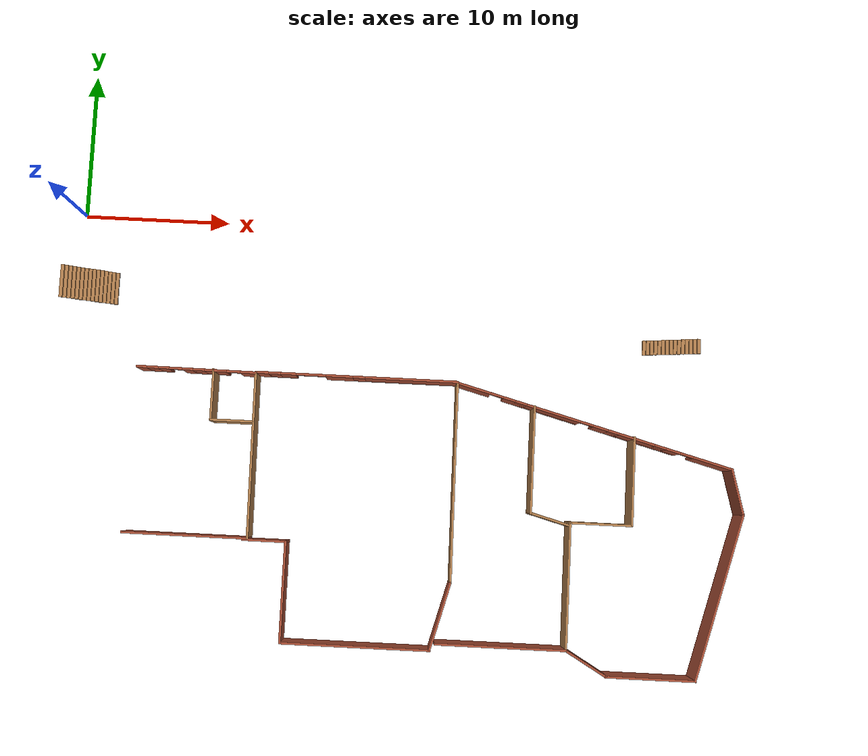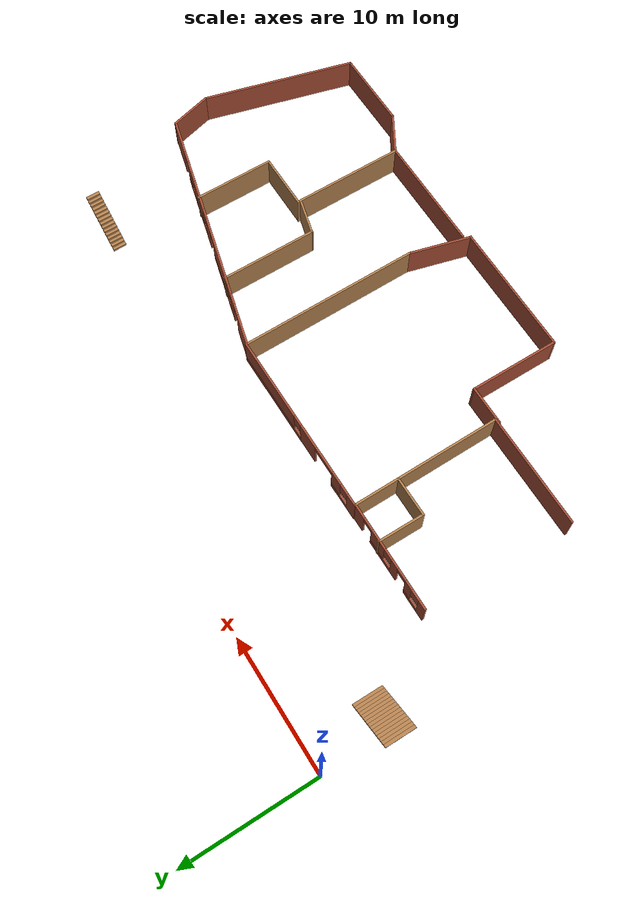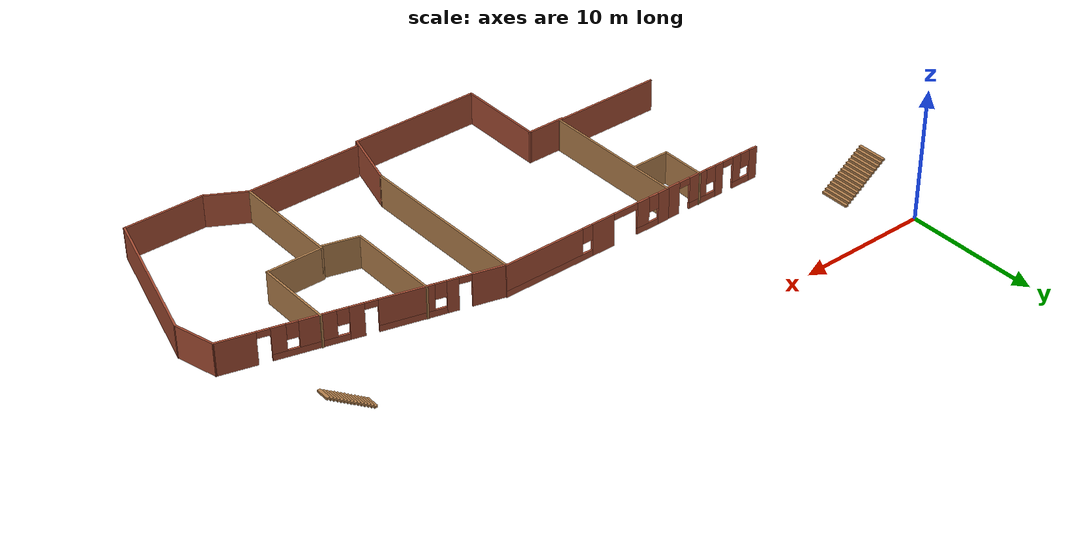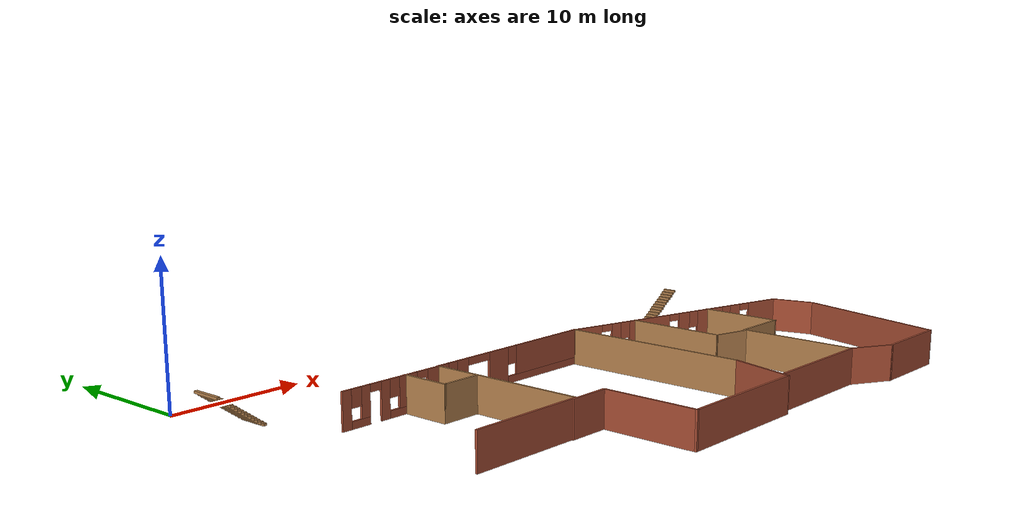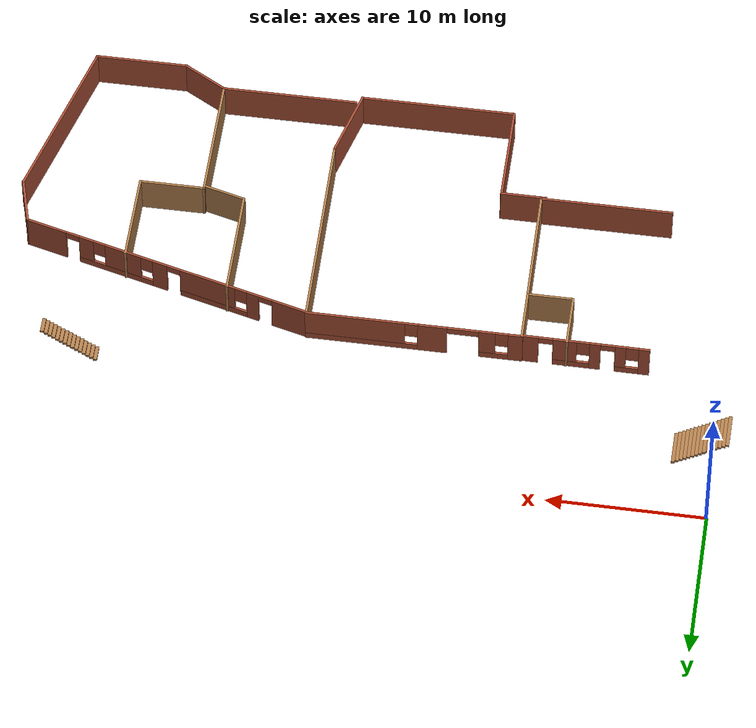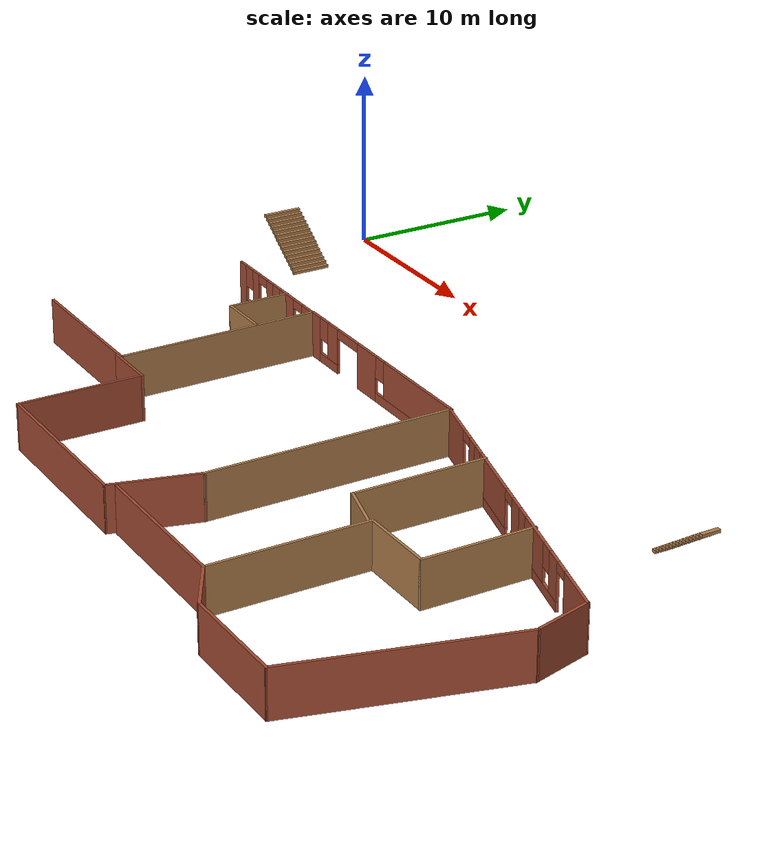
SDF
<sdf version="1.6">
 <model name="vital">
  <pose>12.2387 -3.95497 0 0 -0 0</pose>
  <link name="Stairs_0">
   <visual name="Stairs_0_Visual_0">
    <pose>-9.74123 -1.05523 0.083333 0 -0 -1.5708</pose>
    <geometry><box><size>2.22056 0.233333 0.166667</size></box></geometry>
    <material>
     <script><uri>file://media/materials/scripts/gazebo.material</uri><name>Gazebo/Wood</name></script>
     <ambient>1 1 1 1</ambient>
    </material>
   </visual>
   <collision name="Stairs_0_Collision_0">
    <geometry><box><size>2.22056 0.233333 0.166667</size></box></geometry>
    <pose>-9.74123 -1.05523 0.083333 0 -0 -1.5708</pose>
   </collision>
   <visual name="Stairs_0_Visual_1">
    <pose>-9.97456 -1.05523 0.25 0 -0 -1.5708</pose>
    <geometry><box><size>2.22056 0.233333 0.166667</size></box></geometry>
    <material>
     <script><uri>file://media/materials/scripts/gazebo.material</uri><name>Gazebo/Wood</name></script>
     <ambient>1 1 1 1</ambient>
    </material>
   </visual>
   <collision name="Stairs_0_Collision_1">
    <geometry><box><size>2.22056 0.233333 0.166667</size></box></geometry>
    <pose>-9.97456 -1.05523 0.25 0 -0 -1.5708</pose>
   </collision>
   <visual name="Stairs_0_Visual_2">
    <pose>-10.2079 -1.05523 0.416667 0 -0 -1.5708</pose>
    <geometry><box><size>2.22056 0.233333 0.166667</size></box></geometry>
    <material>
     <script><uri>file://media/materials/scripts/gazebo.material</uri><name>Gazebo/Wood</name></script>
     <ambient>1 1 1 1</ambient>
    </material>
   </visual>
   <collision name="Stairs_0_Collision_2">
    <geometry><box><size>2.22056 0.233333 0.166667</size></box></geometry>
    <pose>-10.2079 -1.05523 0.416667 0 -0 -1.5708</pose>
   </collision>
   <visual name="Stairs_0_Visual_3">
    <pose>-10.4412 -1.05523 0.583333 0 -0 -1.5708</pose>
    <geometry><box><size>2.22056 0.233333 0.166667</size></box></geometry>
    <material>
     <script><uri>file://media/materials/scripts/gazebo.material</uri><name>Gazebo/Wood</name></script>
     <ambient>1 1 1 1</ambient>
    </material>
   </visual>
   <collision name="Stairs_0_Collision_3">
    <geometry><box><size>2.22056 0.233333 0.166667</size></box></geometry>
    <pose>-10.4412 -1.05523 0.583333 0 -0 -1.5708</pose>
   </collision>
   <visual name="Stairs_0_Visual_4">
    <pose>-10.6746 -1.05523 0.75 0 -0 -1.5708</pose>
    <geometry><box><size>2.22056 0.233333 0.166667</size></box></geometry>
    <material>
     <script><uri>file://media/materials/scripts/gazebo.material</uri><name>Gazebo/Wood</name></script>
     <ambient>1 1 1 1</ambient>
    </material>
   </visual>
   <collision name="Stairs_0_Collision_4">
    <geometry><box><size>2.22056 0.233333 0.166667</size></box></geometry>
    <pose>-10.6746 -1.05523 0.75 0 -0 -1.5708</pose>
   </collision>
   <visual name="Stairs_0_Visual_5">
    <pose>-10.9079 -1.05523 0.916667 0 -0 -1.5708</pose>
    <geometry><box><size>2.22056 0.233333 0.166667</size></box></geometry>
    <material>
     <script><uri>file://media/materials/scripts/gazebo.material</uri><name>Gazebo/Wood</name></script>
     <ambient>1 1 1 1</ambient>
    </material>
   </visual>
   <collision name="Stairs_0_Collision_5">
    <geometry><box><size>2.22056 0.233333 0.166667</size></box></geometry>
    <pose>-10.9079 -1.05523 0.916667 0 -0 -1.5708</pose>
   </collision>
   <visual name="Stairs_0_Visual_6">
    <pose>-11.1412 -1.05523 1.08333 0 -0 -1.5708</pose>
    <geometry><box><size>2.22056 0.233333 0.166667</size></box></geometry>
    <material>
     <script><uri>file://media/materials/scripts/gazebo.material</uri><name>Gazebo/Wood</name></script>
     <ambient>1 1 1 1</ambient>
    </material>
   </visual>
   <collision name="Stairs_0_Collision_6">
    <geometry><box><size>2.22056 0.233333 0.166667</size></box></geometry>
    <pose>-11.1412 -1.05523 1.08333 0 -0 -1.5708</pose>
   </collision>
   <visual name="Stairs_0_Visual_7">
    <pose>-11.3746 -1.05523 1.25 0 -0 -1.5708</pose>
    <geometry><box><size>2.22056 0.233333 0.166667</size></box></geometry>
    <material>
     <script><uri>file://media/materials/scripts/gazebo.material</uri><name>Gazebo/Wood</name></script>
     <ambient>1 1 1 1</ambient>
    </material>
   </visual>
   <collision name="Stairs_0_Collision_7">
    <geometry><box><size>2.22056 0.233333 0.166667</size></box></geometry>
    <pose>-11.3746 -1.05523 1.25 0 -0 -1.5708</pose>
   </collision>
   <visual name="Stairs_0_Visual_8">
    <pose>-11.6079 -1.05523 1.41667 0 -0 -1.5708</pose>
    <geometry><box><size>2.22056 0.233333 0.166667</size></box></geometry>
    <material>
     <script><uri>file://media/materials/scripts/gazebo.material</uri><name>Gazebo/Wood</name></script>
     <ambient>1 1 1 1</ambient>
    </material>
   </visual>
   <collision name="Stairs_0_Collision_8">
    <geometry><box><size>2.22056 0.233333 0.166667</size></box></geometry>
    <pose>-11.6079 -1.05523 1.41667 0 -0 -1.5708</pose>
   </collision>
   <visual name="Stairs_0_Visual_9">
    <pose>-11.8412 -1.05523 1.58333 0 -0 -1.5708</pose>
    <geometry><box><size>2.22056 0.233333 0.166667</size></box></geometry>
    <material>
     <script><uri>file://media/materials/scripts/gazebo.material</uri><name>Gazebo/Wood</name></script>
     <ambient>1 1 1 1</ambient>
    </material>
   </visual>
   <collision name="Stairs_0_Collision_9">
    <geometry><box><size>2.22056 0.233333 0.166667</size></box></geometry>
    <pose>-11.8412 -1.05523 1.58333 0 -0 -1.5708</pose>
   </collision>
   <visual name="Stairs_0_Visual_10">
    <pose>-12.0746 -1.05523 1.75 0 -0 -1.5708</pose>
    <geometry><box><size>2.22056 0.233333 0.166667</size></box></geometry>
    <material>
     <script><uri>file://media/materials/scripts/gazebo.material</uri><name>Gazebo/Wood</name></script>
     <ambient>1 1 1 1</ambient>
    </material>
   </visual>
   <collision name="Stairs_0_Collision_10">
    <geometry><box><size>2.22056 0.233333 0.166667</size></box></geometry>
    <pose>-12.0746 -1.05523 1.75 0 -0 -1.5708</pose>
   </collision>
   <visual name="Stairs_0_Visual_11">
    <pose>-12.3079 -1.05523 1.91667 0 -0 -1.5708</pose>
    <geometry><box><size>2.22056 0.233333 0.166667</size></box></geometry>
    <material>
     <script><uri>file://media/materials/scripts/gazebo.material</uri><name>Gazebo/Wood</name></script>
     <ambient>1 1 1 1</ambient>
    </material>
   </visual>
   <collision name="Stairs_0_Collision_11">
    <geometry><box><size>2.22056 0.233333 0.166667</size></box></geometry>
    <pose>-12.3079 -1.05523 1.91667 0 -0 -1.5708</pose>
   </collision>
   <visual name="Stairs_0_Visual_12">
    <pose>-12.5412 -1.05523 2.08333 0 -0 -1.5708</pose>
    <geometry><box><size>2.22056 0.233333 0.166667</size></box></geometry>
    <material>
     <script><uri>file://media/materials/scripts/gazebo.material</uri><name>Gazebo/Wood</name></script>
     <ambient>1 1 1 1</ambient>
    </material>
   </visual>
   <collision name="Stairs_0_Collision_12">
    <geometry><box><size>2.22056 0.233333 0.166667</size></box></geometry>
    <pose>-12.5412 -1.05523 2.08333 0 -0 -1.5708</pose>
   </collision>
   <visual name="Stairs_0_Visual_13">
    <pose>-12.7746 -1.05523 2.25 0 -0 -1.5708</pose>
    <geometry><box><size>2.22056 0.233333 0.166667</size></box></geometry>
    <material>
     <script><uri>file://media/materials/scripts/gazebo.material</uri><name>Gazebo/Wood</name></script>
     <ambient>1 1 1 1</ambient>
    </material>
   </visual>
   <collision name="Stairs_0_Collision_13">
    <geometry><box><size>2.22056 0.233333 0.166667</size></box></geometry>
    <pose>-12.7746 -1.05523 2.25 0 -0 -1.5708</pose>
   </collision>
   <visual name="Stairs_0_Visual_14">
    <pose>-13.0079 -1.05522 2.41667 0 -0 -1.5708</pose>
    <geometry><box><size>2.22056 0.233333 0.166667</size></box></geometry>
    <material>
     <script><uri>file://media/materials/scripts/gazebo.material</uri><name>Gazebo/Wood</name></script>
     <ambient>1 1 1 1</ambient>
    </material>
   </visual>
   <collision name="Stairs_0_Collision_14">
    <geometry><box><size>2.22056 0.233333 0.166667</size></box></geometry>
    <pose>-13.0079 -1.05522 2.41667 0 -0 -1.5708</pose>
   </collision>
  </link>
  <link name="Stairs_1">
   <visual name="Stairs_1_Visual_0">
    <pose>27.018 -3.37906 0.083333 0 -0 1.5708</pose>
    <geometry><box><size>1 0.233333 0.166667</size></box></geometry>
    <material>
     <script><uri>file://media/materials/scripts/gazebo.material</uri><name>Gazebo/Wood</name></script>
     <ambient>1 1 1 1</ambient>
    </material>
   </visual>
   <collision name="Stairs_1_Collision_0">
    <geometry><box><size>1 0.233333 0.166667</size></box></geometry>
    <pose>27.018 -3.37906 0.083333 0 -0 1.5708</pose>
   </collision>
   <visual name="Stairs_1_Visual_1">
    <pose>27.2513 -3.37906 0.25 0 -0 1.5708</pose>
    <geometry><box><size>1 0.233333 0.166667</size></box></geometry>
    <material>
     <script><uri>file://media/materials/scripts/gazebo.material</uri><name>Gazebo/Wood</name></script>
     <ambient>1 1 1 1</ambient>
    </material>
   </visual>
   <collision name="Stairs_1_Collision_1">
    <geometry><box><size>1 0.233333 0.166667</size></box></geometry>
    <pose>27.2513 -3.37906 0.25 0 -0 1.5708</pose>
   </collision>
   <visual name="Stairs_1_Visual_2">
    <pose>27.4847 -3.37906 0.416667 0 -0 1.5708</pose>
    <geometry><box><size>1 0.233333 0.166667</size></box></geometry>
    <material>
     <script><uri>file://media/materials/scripts/gazebo.material</uri><name>Gazebo/Wood</name></script>
     <ambient>1 1 1 1</ambient>
    </material>
   </visual>
   <collision name="Stairs_1_Collision_2">
    <geometry><box><size>1 0.233333 0.166667</size></box></geometry>
    <pose>27.4847 -3.37906 0.416667 0 -0 1.5708</pose>
   </collision>
   <visual name="Stairs_1_Visual_3">
    <pose>27.718 -3.37906 0.583333 0 -0 1.5708</pose>
    <geometry><box><size>1 0.233333 0.166667</size></box></geometry>
    <material>
     <script><uri>file://media/materials/scripts/gazebo.material</uri><name>Gazebo/Wood</name></script>
     <ambient>1 1 1 1</ambient>
    </material>
   </visual>
   <collision name="Stairs_1_Collision_3">
    <geometry><box><size>1 0.233333 0.166667</size></box></geometry>
    <pose>27.718 -3.37906 0.583333 0 -0 1.5708</pose>
   </collision>
   <visual name="Stairs_1_Visual_4">
    <pose>27.9513 -3.37906 0.75 0 -0 1.5708</pose>
    <geometry><box><size>1 0.233333 0.166667</size></box></geometry>
    <material>
     <script><uri>file://media/materials/scripts/gazebo.material</uri><name>Gazebo/Wood</name></script>
     <ambient>1 1 1 1</ambient>
    </material>
   </visual>
   <collision name="Stairs_1_Collision_4">
    <geometry><box><size>1 0.233333 0.166667</size></box></geometry>
    <pose>27.9513 -3.37906 0.75 0 -0 1.5708</pose>
   </collision>
   <visual name="Stairs_1_Visual_5">
    <pose>28.1847 -3.37906 0.916667 0 -0 1.5708</pose>
    <geometry><box><size>1 0.233333 0.166667</size></box></geometry>
    <material>
     <script><uri>file://media/materials/scripts/gazebo.material</uri><name>Gazebo/Wood</name></script>
     <ambient>1 1 1 1</ambient>
    </material>
   </visual>
   <collision name="Stairs_1_Collision_5">
    <geometry><box><size>1 0.233333 0.166667</size></box></geometry>
    <pose>28.1847 -3.37906 0.916667 0 -0 1.5708</pose>
   </collision>
   <visual name="Stairs_1_Visual_6">
    <pose>28.418 -3.37906 1.08333 0 -0 1.5708</pose>
    <geometry><box><size>1 0.233333 0.166667</size></box></geometry>
    <material>
     <script><uri>file://media/materials/scripts/gazebo.material</uri><name>Gazebo/Wood</name></script>
     <ambient>1 1 1 1</ambient>
    </material>
   </visual>
   <collision name="Stairs_1_Collision_6">
    <geometry><box><size>1 0.233333 0.166667</size></box></geometry>
    <pose>28.418 -3.37906 1.08333 0 -0 1.5708</pose>
   </collision>
   <visual name="Stairs_1_Visual_7">
    <pose>28.6513 -3.37906 1.25 0 -0 1.5708</pose>
    <geometry><box><size>1 0.233333 0.166667</size></box></geometry>
    <material>
     <script><uri>file://media/materials/scripts/gazebo.material</uri><name>Gazebo/Wood</name></script>
     <ambient>1 1 1 1</ambient>
    </material>
   </visual>
   <collision name="Stairs_1_Collision_7">
    <geometry><box><size>1 0.233333 0.166667</size></box></geometry>
    <pose>28.6513 -3.37906 1.25 0 -0 1.5708</pose>
   </collision>
   <visual name="Stairs_1_Visual_8">
    <pose>28.8847 -3.37906 1.41667 0 -0 1.5708</pose>
    <geometry><box><size>1 0.233333 0.166667</size></box></geometry>
    <material>
     <script><uri>file://media/materials/scripts/gazebo.material</uri><name>Gazebo/Wood</name></script>
     <ambient>1 1 1 1</ambient>
    </material>
   </visual>
   <collision name="Stairs_1_Collision_8">
    <geometry><box><size>1 0.233333 0.166667</size></box></geometry>
    <pose>28.8847 -3.37906 1.41667 0 -0 1.5708</pose>
   </collision>
   <visual name="Stairs_1_Visual_9">
    <pose>29.118 -3.37906 1.58333 0 -0 1.5708</pose>
    <geometry><box><size>1 0.233333 0.166667</size></box></geometry>
    <material>
     <script><uri>file://media/materials/scripts/gazebo.material</uri><name>Gazebo/Wood</name></script>
     <ambient>1 1 1 1</ambient>
    </material>
   </visual>
   <collision name="Stairs_1_Collision_9">
    <geometry><box><size>1 0.233333 0.166667</size></box></geometry>
    <pose>29.118 -3.37906 1.58333 0 -0 1.5708</pose>
   </collision>
   <visual name="Stairs_1_Visual_10">
    <pose>29.3513 -3.37906 1.75 0 -0 1.5708</pose>
    <geometry><box><size>1 0.233333 0.166667</size></box></geometry>
    <material>
     <script><uri>file://media/materials/scripts/gazebo.material</uri><name>Gazebo/Wood</name></script>
     <ambient>1 1 1 1</ambient>
    </material>
   </visual>
   <collision name="Stairs_1_Collision_10">
    <geometry><box><size>1 0.233333 0.166667</size></box></geometry>
    <pose>29.3513 -3.37906 1.75 0 -0 1.5708</pose>
   </collision>
   <visual name="Stairs_1_Visual_11">
    <pose>29.5847 -3.37906 1.91667 0 -0 1.5708</pose>
    <geometry><box><size>1 0.233333 0.166667</size></box></geometry>
    <material>
     <script><uri>file://media/materials/scripts/gazebo.material</uri><name>Gazebo/Wood</name></script>
     <ambient>1 1 1 1</ambient>
    </material>
   </visual>
   <collision name="Stairs_1_Collision_11">
    <geometry><box><size>1 0.233333 0.166667</size></box></geometry>
    <pose>29.5847 -3.37906 1.91667 0 -0 1.5708</pose>
   </collision>
   <visual name="Stairs_1_Visual_12">
    <pose>29.818 -3.37906 2.08333 0 -0 1.5708</pose>
    <geometry><box><size>1 0.233333 0.166667</size></box></geometry>
    <material>
     <script><uri>file://media/materials/scripts/gazebo.material</uri><name>Gazebo/Wood</name></script>
     <ambient>1 1 1 1</ambient>
    </material>
   </visual>
   <collision name="Stairs_1_Collision_12">
    <geometry><box><size>1 0.233333 0.166667</size></box></geometry>
    <pose>29.818 -3.37906 2.08333 0 -0 1.5708</pose>
   </collision>
   <visual name="Stairs_1_Visual_13">
    <pose>30.0513 -3.37906 2.25 0 -0 1.5708</pose>
    <geometry><box><size>1 0.233333 0.166667</size></box></geometry>
    <material>
     <script><uri>file://media/materials/scripts/gazebo.material</uri><name>Gazebo/Wood</name></script>
     <ambient>1 1 1 1</ambient>
    </material>
   </visual>
   <collision name="Stairs_1_Collision_13">
    <geometry><box><size>1 0.233333 0.166667</size></box></geometry>
    <pose>30.0513 -3.37906 2.25 0 -0 1.5708</pose>
   </collision>
   <visual name="Stairs_1_Visual_14">
    <pose>30.2847 -3.37905 2.41667 0 -0 1.5708</pose>
    <geometry><box><size>1 0.233333 0.166667</size></box></geometry>
    <material>
     <script><uri>file://media/materials/scripts/gazebo.material</uri><name>Gazebo/Wood</name></script>
     <ambient>1 1 1 1</ambient>
    </material>
   </visual>
   <collision name="Stairs_1_Collision_14">
    <geometry><box><size>1 0.233333 0.166667</size></box></geometry>
    <pose>30.2847 -3.37905 2.41667 0 -0 1.5708</pose>
   </collision>
  </link>
  <link name="Wall_116">
   <pose>-3.44702 -6.63306 0 0 0 -0.006694</pose>
   <visual name="Wall_116_Visual_0">
    <pose>-3.71942 0 1.25 0 -0 0</pose>
    <geometry><box><size>0.704332 0.15 2.5</size></box></geometry>
    <material>
     <script><uri>file://media/materials/scripts/gazebo.material</uri><name>Gazebo/Bricks</name></script>
     <ambient>1 1 1 1</ambient>
    </material>
   </visual>
   <collision name="Wall_116_Collision_0">
    <geometry><box><size>0.704332 0.15 2.5</size></box></geometry>
    <pose>-3.71942 0 1.25 0 -0 0</pose>
   </collision>
   <visual name="Wall_116_Visual_1">
    <pose>-0.624879 0 1.25 0 -0 0</pose>
    <geometry><box><size>0.697096 0.15 2.5</size></box></geometry>
    <material>
     <script><uri>file://media/materials/scripts/gazebo.material</uri><name>Gazebo/Bricks</name></script>
     <ambient>1 1 1 1</ambient>
    </material>
   </visual>
   <collision name="Wall_116_Collision_1">
    <geometry><box><size>0.697096 0.15 2.5</size></box></geometry>
    <pose>-0.624879 0 1.25 0 -0 0</pose>
   </collision>
   <visual name="Wall_116_Visual_2">
    <pose>3.5022 0 1.25 0 -0 0</pose>
    <geometry><box><size>1.13877 0.15 2.5</size></box></geometry>
    <material>
     <script><uri>file://media/materials/scripts/gazebo.material</uri><name>Gazebo/Bricks</name></script>
     <ambient>1 1 1 1</ambient>
    </material>
   </visual>
   <collision name="Wall_116_Collision_2">
    <geometry><box><size>1.13877 0.15 2.5</size></box></geometry>
    <pose>3.5022 0 1.25 0 -0 0</pose>
   </collision>
   <visual name="Wall_116_Visual_3">
    <pose>-2.62034 0 0.25 0 -0 0</pose>
    <geometry><box><size>1.49383 0.15 0.5</size></box></geometry>
    <material>
     <script><uri>file://media/materials/scripts/gazebo.material</uri><name>Gazebo/Bricks</name></script>
     <ambient>1 1 1 1</ambient>
    </material>
   </visual>
   <collision name="Wall_116_Collision_3">
    <geometry><box><size>1.49383 0.15 0.5</size></box></geometry>
    <pose>-2.62034 0 0.25 0 -0 0</pose>
   </collision>
   <visual name="Wall_116_Visual_4">
    <pose>0.878245 0 0.25 0 -0 0</pose>
    <geometry><box><size>2.30915 0.15 0.5</size></box></geometry>
    <material>
     <script><uri>file://media/materials/scripts/gazebo.material</uri><name>Gazebo/Bricks</name></script>
     <ambient>1 1 1 1</ambient>
    </material>
   </visual>
   <collision name="Wall_116_Collision_4">
    <geometry><box><size>2.30915 0.15 0.5</size></box></geometry>
    <pose>0.878245 0 0.25 0 -0 0</pose>
   </collision>
   <visual name="Wall_116_Visual_5">
    <pose>-2.22034 0 1.5 0 -0 0</pose>
    <geometry><box><size>0.693829 0.15 2</size></box></geometry>
    <material>
     <script><uri>file://media/materials/scripts/gazebo.material</uri><name>Gazebo/Bricks</name></script>
     <ambient>1 1 1 1</ambient>
    </material>
   </visual>
   <collision name="Wall_116_Collision_5">
    <geometry><box><size>0.693829 0.15 2</size></box></geometry>
    <pose>-2.22034 0 1.5 0 -0 0</pose>
   </collision>
   <visual name="Wall_116_Visual_6">
    <pose>-2.22034 0 1.5 0 -0 0</pose>
    <geometry><box><size>0.693829 0.15 2</size></box></geometry>
    <material>
     <script><uri>file://media/materials/scripts/gazebo.material</uri><name>Gazebo/Bricks</name></script>
     <ambient>1 1 1 1</ambient>
    </material>
   </visual>
   <collision name="Wall_116_Collision_6">
    <geometry><box><size>0.693829 0.15 2</size></box></geometry>
    <pose>-2.22034 0 1.5 0 -0 0</pose>
   </collision>
   <visual name="Wall_116_Visual_7">
    <pose>1.27825 0 1.5 0 -0 0</pose>
    <geometry><box><size>1.50915 0.15 2</size></box></geometry>
    <material>
     <script><uri>file://media/materials/scripts/gazebo.material</uri><name>Gazebo/Bricks</name></script>
     <ambient>1 1 1 1</ambient>
    </material>
   </visual>
   <collision name="Wall_116_Collision_7">
    <geometry><box><size>1.50915 0.15 2</size></box></geometry>
    <pose>1.27825 0 1.5 0 -0 0</pose>
   </collision>
   <visual name="Wall_116_Visual_8">
    <pose>-2.96726 0 1.9 0 -0 0</pose>
    <geometry><box><size>0.8 0.15 1.2</size></box></geometry>
    <material>
     <script><uri>file://media/materials/scripts/gazebo.material</uri><name>Gazebo/Bricks</name></script>
     <ambient>1 1 1 1</ambient>
    </material>
   </visual>
   <collision name="Wall_116_Collision_8">
    <geometry><box><size>0.8 0.15 1.2</size></box></geometry>
    <pose>-2.96726 0 1.9 0 -0 0</pose>
   </collision>
   <visual name="Wall_116_Visual_9">
    <pose>0.12367 0 1.9 0 -0 0</pose>
    <geometry><box><size>0.8 0.15 1.2</size></box></geometry>
    <material>
     <script><uri>file://media/materials/scripts/gazebo.material</uri><name>Gazebo/Bricks</name></script>
     <ambient>1 1 1 1</ambient>
    </material>
   </visual>
   <collision name="Wall_116_Collision_9">
    <geometry><box><size>0.8 0.15 1.2</size></box></geometry>
    <pose>0.12367 0 1.9 0 -0 0</pose>
   </collision>
   <visual name="Wall_116_Visual_10">
    <pose>-1.42343 0 2.25 0 -0 0</pose>
    <geometry><box><size>0.9 0.15 0.5</size></box></geometry>
    <material>
     <script><uri>file://media/materials/scripts/gazebo.material</uri><name>Gazebo/Bricks</name></script>
     <ambient>1 1 1 1</ambient>
    </material>
   </visual>
   <collision name="Wall_116_Collision_10">
    <geometry><box><size>0.9 0.15 0.5</size></box></geometry>
    <pose>-1.42343 0 2.25 0 -0 0</pose>
   </collision>
   <visual name="Wall_116_Visual_11">
    <pose>-1.42343 0 2.25 0 -0 0</pose>
    <geometry><box><size>0.9 0.15 0.5</size></box></geometry>
    <material>
     <script><uri>file://media/materials/scripts/gazebo.material</uri><name>Gazebo/Bricks</name></script>
     <ambient>1 1 1 1</ambient>
    </material>
   </visual>
   <collision name="Wall_116_Collision_11">
    <geometry><box><size>0.9 0.15 0.5</size></box></geometry>
    <pose>-1.42343 0 2.25 0 -0 0</pose>
   </collision>
   <visual name="Wall_116_Visual_12">
    <pose>2.48282 0 2.25 0 -0 0</pose>
    <geometry><box><size>0.9 0.15 0.5</size></box></geometry>
    <material>
     <script><uri>file://media/materials/scripts/gazebo.material</uri><name>Gazebo/Bricks</name></script>
     <ambient>1 1 1 1</ambient>
    </material>
   </visual>
   <collision name="Wall_116_Collision_12">
    <geometry><box><size>0.9 0.15 0.5</size></box></geometry>
    <pose>2.48282 0 2.25 0 -0 0</pose>
   </collision>
  </link>
  <link name="Wall_117">
   <collision name="Wall_117_Collision">
    <geometry><box><size>11.197 0.15 2.5</size></box></geometry>
    <pose>0 0 1.25 0 -0 0</pose>
   </collision>
   <visual name="Wall_117_Visual">
    <pose>0 0 1.25 0 -0 0</pose>
    <geometry><box><size>11.197 0.15 2.5</size></box></geometry>
    <material>
     <script><uri>file://media/materials/scripts/gazebo.material</uri><name>Gazebo/Wood</name></script>
     <ambient>1 1 1 1</ambient>
    </material>
   </visual>
   <pose>0.602983 -12.1831 0 0 0 -1.56111</pose>
  </link>
  <link name="Wall_118">
   <collision name="Wall_118_Collision">
    <geometry><box><size>8.5 0.15 2.5</size></box></geometry>
    <pose>0 0 1.25 0 -0 0</pose>
   </collision>
   <visual name="Wall_118_Visual">
    <pose>0 0 1.25 0 -0 0</pose>
    <geometry><box><size>8.5 0.15 2.5</size></box></geometry>
    <material>
     <script><uri>file://media/materials/scripts/gazebo.material</uri><name>Gazebo/Bricks</name></script>
     <ambient>1 1 1 1</ambient>
    </material>
   </visual>
   <pose>-3.51851 -17.7063 0 0 -0 3.14159</pose>
  </link>
  <link name="Wall_122">
   <collision name="Wall_122_Collision">
    <geometry><box><size>3.5 0.15 2.5</size></box></geometry>
    <pose>0 0 1.25 0 -0 0</pose>
   </collision>
   <visual name="Wall_122_Visual">
    <pose>0 0 1.25 0 -0 0</pose>
    <geometry><box><size>3.5 0.15 2.5</size></box></geometry>
    <material>
     <script><uri>file://media/materials/scripts/gazebo.material</uri><name>Gazebo/Wood</name></script>
     <ambient>1 1 1 1</ambient>
    </material>
   </visual>
   <pose>-2.29682 -8.28131 0 0 0 -1.5708</pose>
  </link>
  <link name="Wall_123">
   <collision name="Wall_123_Collision">
    <geometry><box><size>3 0.15 2.5</size></box></geometry>
    <pose>0 0 1.25 0 -0 0</pose>
   </collision>
   <visual name="Wall_123_Visual">
    <pose>0 0 1.25 0 -0 0</pose>
    <geometry><box><size>3 0.15 2.5</size></box></geometry>
    <material>
     <script><uri>file://media/materials/scripts/gazebo.material</uri><name>Gazebo/Wood</name></script>
     <ambient>1 1 1 1</ambient>
    </material>
   </visual>
   <pose>-0.871823 -9.95631 0 0 -0 0</pose>
  </link>
  <link name="Wall_125">
   <pose>7.34948 -6.60631 0 0 -0 0</pose>
   <visual name="Wall_125_Visual_0">
    <pose>-6.41052 0 1.25 0 -0 0</pose>
    <geometry><box><size>0.928962 0.15 2.5</size></box></geometry>
    <material>
     <script><uri>file://media/materials/scripts/gazebo.material</uri><name>Gazebo/Bricks</name></script>
     <ambient>1 1 1 1</ambient>
    </material>
   </visual>
   <collision name="Wall_125_Collision_0">
    <geometry><box><size>0.928962 0.15 2.5</size></box></geometry>
    <pose>-6.41052 0 1.25 0 -0 0</pose>
   </collision>
   <visual name="Wall_125_Visual_1">
    <pose>-1.17751 0 1.25 0 -0 0</pose>
    <geometry><box><size>1.85483 0.15 2.5</size></box></geometry>
    <material>
     <script><uri>file://media/materials/scripts/gazebo.material</uri><name>Gazebo/Bricks</name></script>
     <ambient>1 1 1 1</ambient>
    </material>
   </visual>
   <collision name="Wall_125_Collision_1">
    <geometry><box><size>1.85483 0.15 2.5</size></box></geometry>
    <pose>-1.17751 0 1.25 0 -0 0</pose>
   </collision>
   <visual name="Wall_125_Visual_2">
    <pose>-5.02548 0 0.25 0 -0 0</pose>
    <geometry><box><size>1.84112 0.15 0.5</size></box></geometry>
    <material>
     <script><uri>file://media/materials/scripts/gazebo.material</uri><name>Gazebo/Bricks</name></script>
     <ambient>1 1 1 1</ambient>
    </material>
   </visual>
   <collision name="Wall_125_Collision_2">
    <geometry><box><size>1.84112 0.15 0.5</size></box></geometry>
    <pose>-5.02548 0 0.25 0 -0 0</pose>
   </collision>
   <visual name="Wall_125_Visual_3">
    <pose>3.31245 0 0.25 0 -0 0</pose>
    <geometry><box><size>7.12509 0.15 0.5</size></box></geometry>
    <material>
     <script><uri>file://media/materials/scripts/gazebo.material</uri><name>Gazebo/Bricks</name></script>
     <ambient>1 1 1 1</ambient>
    </material>
   </visual>
   <collision name="Wall_125_Collision_3">
    <geometry><box><size>7.12509 0.15 0.5</size></box></geometry>
    <pose>3.31245 0 0.25 0 -0 0</pose>
   </collision>
   <visual name="Wall_125_Visual_4">
    <pose>-4.62548 0 1.5 0 -0 0</pose>
    <geometry><box><size>1.04112 0.15 2</size></box></geometry>
    <material>
     <script><uri>file://media/materials/scripts/gazebo.material</uri><name>Gazebo/Bricks</name></script>
     <ambient>1 1 1 1</ambient>
    </material>
   </visual>
   <collision name="Wall_125_Collision_4">
    <geometry><box><size>1.04112 0.15 2</size></box></geometry>
    <pose>-4.62548 0 1.5 0 -0 0</pose>
   </collision>
   <visual name="Wall_125_Visual_5">
    <pose>-4.62548 0 1.5 0 -0 0</pose>
    <geometry><box><size>1.04112 0.15 2</size></box></geometry>
    <material>
     <script><uri>file://media/materials/scripts/gazebo.material</uri><name>Gazebo/Bricks</name></script>
     <ambient>1 1 1 1</ambient>
    </material>
   </visual>
   <collision name="Wall_125_Collision_5">
    <geometry><box><size>1.04112 0.15 2</size></box></geometry>
    <pose>-4.62548 0 1.5 0 -0 0</pose>
   </collision>
   <visual name="Wall_125_Visual_6">
    <pose>3.71245 0 1.5 0 -0 0</pose>
    <geometry><box><size>6.32509 0.15 2</size></box></geometry>
    <material>
     <script><uri>file://media/materials/scripts/gazebo.material</uri><name>Gazebo/Bricks</name></script>
     <ambient>1 1 1 1</ambient>
    </material>
   </visual>
   <collision name="Wall_125_Collision_6">
    <geometry><box><size>6.32509 0.15 2</size></box></geometry>
    <pose>3.71245 0 1.5 0 -0 0</pose>
   </collision>
   <visual name="Wall_125_Visual_7">
    <pose>-5.54604 0 1.9 0 -0 0</pose>
    <geometry><box><size>0.8 0.15 1.2</size></box></geometry>
    <material>
     <script><uri>file://media/materials/scripts/gazebo.material</uri><name>Gazebo/Bricks</name></script>
     <ambient>1 1 1 1</ambient>
    </material>
   </visual>
   <collision name="Wall_125_Collision_7">
    <geometry><box><size>0.8 0.15 1.2</size></box></geometry>
    <pose>-5.54604 0 1.9 0 -0 0</pose>
   </collision>
   <visual name="Wall_125_Visual_8">
    <pose>0.149906 0 1.9 0 -0 0</pose>
    <geometry><box><size>0.8 0.15 1.2</size></box></geometry>
    <material>
     <script><uri>file://media/materials/scripts/gazebo.material</uri><name>Gazebo/Bricks</name></script>
     <ambient>1 1 1 1</ambient>
    </material>
   </visual>
   <collision name="Wall_125_Collision_8">
    <geometry><box><size>0.8 0.15 1.2</size></box></geometry>
    <pose>0.149906 0 1.9 0 -0 0</pose>
   </collision>
   <visual name="Wall_125_Visual_9">
    <pose>-3.10492 0 2.25 0 -0 0</pose>
    <geometry><box><size>2 0.15 0.5</size></box></geometry>
    <material>
     <script><uri>file://media/materials/scripts/gazebo.material</uri><name>Gazebo/Bricks</name></script>
     <ambient>1 1 1 1</ambient>
    </material>
   </visual>
   <collision name="Wall_125_Collision_9">
    <geometry><box><size>2 0.15 0.5</size></box></geometry>
    <pose>-3.10492 0 2.25 0 -0 0</pose>
   </collision>
   <visual name="Wall_125_Visual_10">
    <pose>-3.10492 0 2.25 0 -0 0</pose>
    <geometry><box><size>2 0.15 0.5</size></box></geometry>
    <material>
     <script><uri>file://media/materials/scripts/gazebo.material</uri><name>Gazebo/Bricks</name></script>
     <ambient>1 1 1 1</ambient>
    </material>
   </visual>
   <collision name="Wall_125_Collision_10">
    <geometry><box><size>2 0.15 0.5</size></box></geometry>
    <pose>-3.10492 0 2.25 0 -0 0</pose>
   </collision>
  </link>
  <link name="Wall_126">
   <collision name="Wall_126_Collision">
    <geometry><box><size>13.4469 0.15 2.5</size></box></geometry>
    <pose>0 0 1.25 0 -0 0</pose>
   </collision>
   <visual name="Wall_126_Visual">
    <pose>0 0 1.25 0 -0 0</pose>
    <geometry><box><size>13.4469 0.15 2.5</size></box></geometry>
    <material>
     <script><uri>file://media/materials/scripts/gazebo.material</uri><name>Gazebo/Wood</name></script>
     <ambient>1 1 1 1</ambient>
    </material>
   </visual>
   <pose>14.203 -13.3081 0 0 0 -1.56275</pose>
  </link>
  <link name="Wall_127">
   <collision name="Wall_127_Collision">
    <geometry><box><size>4.75 0.15 2.5</size></box></geometry>
    <pose>0 0 1.25 0 -0 0</pose>
   </collision>
   <visual name="Wall_127_Visual">
    <pose>0 0 1.25 0 -0 0</pose>
    <geometry><box><size>4.75 0.15 2.5</size></box></geometry>
    <material>
     <script><uri>file://media/materials/scripts/gazebo.material</uri><name>Gazebo/Bricks</name></script>
     <ambient>1 1 1 1</ambient>
    </material>
   </visual>
   <pose>13.6612 -22.1779 0 0 0 -1.8326</pose>
  </link>
  <link name="Wall_128">
   <collision name="Wall_128_Collision">
    <geometry><box><size>10 0.15 2.5</size></box></geometry>
    <pose>0 0 1.25 0 -0 0</pose>
   </collision>
   <visual name="Wall_128_Visual">
    <pose>0 0 1.25 0 -0 0</pose>
    <geometry><box><size>10 0.15 2.5</size></box></geometry>
    <material>
     <script><uri>file://media/materials/scripts/gazebo.material</uri><name>Gazebo/Bricks</name></script>
     <ambient>1 1 1 1</ambient>
    </material>
   </visual>
   <pose>8.14092 -24.3996 0 0 -0 3.14159</pose>
  </link>
  <link name="Wall_129">
   <collision name="Wall_129_Collision">
    <geometry><box><size>6.75 0.15 2.5</size></box></geometry>
    <pose>0 0 1.25 0 -0 0</pose>
   </collision>
   <visual name="Wall_129_Visual">
    <pose>0 0 1.25 0 -0 0</pose>
    <geometry><box><size>6.75 0.15 2.5</size></box></geometry>
    <material>
     <script><uri>file://media/materials/scripts/gazebo.material</uri><name>Gazebo/Bricks</name></script>
     <ambient>1 1 1 1</ambient>
    </material>
   </visual>
   <pose>3.21592 -21.0996 0 0 -0 1.5708</pose>
  </link>
  <link name="Wall_130">
   <collision name="Wall_130_Collision">
    <geometry><box><size>3 0.15 2.5</size></box></geometry>
    <pose>0 0 1.25 0 -0 0</pose>
   </collision>
   <visual name="Wall_130_Visual">
    <pose>0 0 1.25 0 -0 0</pose>
    <geometry><box><size>3 0.15 2.5</size></box></geometry>
    <material>
     <script><uri>file://media/materials/scripts/gazebo.material</uri><name>Gazebo/Bricks</name></script>
     <ambient>1 1 1 1</ambient>
    </material>
   </visual>
   <pose>1.79092 -17.7996 0 0 -0 3.14159</pose>
  </link>
  <link name="Wall_132">
   <pose>23.4276 -9.10478 0 0 0 -0.257663</pose>
   <visual name="Wall_132_Visual_0">
    <pose>-8.46456 0 1.25 0 -0 0</pose>
    <geometry><box><size>2.41055 0.15 2.5</size></box></geometry>
    <material>
     <script><uri>file://media/materials/scripts/gazebo.material</uri><name>Gazebo/Bricks</name></script>
     <ambient>1 1 1 1</ambient>
    </material>
   </visual>
   <collision name="Wall_132_Collision_0">
    <geometry><box><size>2.41055 0.15 2.5</size></box></geometry>
    <pose>-8.46456 0 1.25 0 -0 0</pose>
   </collision>
   <visual name="Wall_132_Visual_1">
    <pose>-5.94773 0 1.25 0 -0 0</pose>
    <geometry><box><size>0.823107 0.15 2.5</size></box></geometry>
    <material>
     <script><uri>file://media/materials/scripts/gazebo.material</uri><name>Gazebo/Bricks</name></script>
     <ambient>1 1 1 1</ambient>
    </material>
   </visual>
   <collision name="Wall_132_Collision_1">
    <geometry><box><size>0.823107 0.15 2.5</size></box></geometry>
    <pose>-5.94773 0 1.25 0 -0 0</pose>
   </collision>
   <visual name="Wall_132_Visual_2">
    <pose>0.434489 0 1.25 0 -0 0</pose>
    <geometry><box><size>1.00547 0.15 2.5</size></box></geometry>
    <material>
     <script><uri>file://media/materials/scripts/gazebo.material</uri><name>Gazebo/Bricks</name></script>
     <ambient>1 1 1 1</ambient>
    </material>
   </visual>
   <collision name="Wall_132_Collision_2">
    <geometry><box><size>1.00547 0.15 2.5</size></box></geometry>
    <pose>0.434489 0 1.25 0 -0 0</pose>
   </collision>
   <visual name="Wall_132_Visual_3">
    <pose>8.28604 0 1.25 0 -0 0</pose>
    <geometry><box><size>2.76759 0.15 2.5</size></box></geometry>
    <material>
     <script><uri>file://media/materials/scripts/gazebo.material</uri><name>Gazebo/Bricks</name></script>
     <ambient>1 1 1 1</ambient>
    </material>
   </visual>
   <collision name="Wall_132_Collision_3">
    <geometry><box><size>2.76759 0.15 2.5</size></box></geometry>
    <pose>8.28604 0 1.25 0 -0 0</pose>
   </collision>
   <visual name="Wall_132_Visual_4">
    <pose>-3.25221 0 0.25 0 -0 0</pose>
    <geometry><box><size>4.56793 0.15 0.5</size></box></geometry>
    <material>
     <script><uri>file://media/materials/scripts/gazebo.material</uri><name>Gazebo/Bricks</name></script>
     <ambient>1 1 1 1</ambient>
    </material>
   </visual>
   <collision name="Wall_132_Collision_4">
    <geometry><box><size>4.56793 0.15 0.5</size></box></geometry>
    <pose>-3.25221 0 0.25 0 -0 0</pose>
   </collision>
   <visual name="Wall_132_Visual_5">
    <pose>3.46974 0 0.25 0 -0 0</pose>
    <geometry><box><size>5.06503 0.15 0.5</size></box></geometry>
    <material>
     <script><uri>file://media/materials/scripts/gazebo.material</uri><name>Gazebo/Bricks</name></script>
     <ambient>1 1 1 1</ambient>
    </material>
   </visual>
   <collision name="Wall_132_Collision_5">
    <geometry><box><size>5.06503 0.15 0.5</size></box></geometry>
    <pose>3.46974 0 0.25 0 -0 0</pose>
   </collision>
   <visual name="Wall_132_Visual_6">
    <pose>-2.85221 0 1.5 0 -0 0</pose>
    <geometry><box><size>3.76793 0.15 2</size></box></geometry>
    <material>
     <script><uri>file://media/materials/scripts/gazebo.material</uri><name>Gazebo/Bricks</name></script>
     <ambient>1 1 1 1</ambient>
    </material>
   </visual>
   <collision name="Wall_132_Collision_6">
    <geometry><box><size>3.76793 0.15 2</size></box></geometry>
    <pose>-2.85221 0 1.5 0 -0 0</pose>
   </collision>
   <visual name="Wall_132_Visual_7">
    <pose>-2.85221 0 1.5 0 -0 0</pose>
    <geometry><box><size>3.76793 0.15 2</size></box></geometry>
    <material>
     <script><uri>file://media/materials/scripts/gazebo.material</uri><name>Gazebo/Bricks</name></script>
     <ambient>1 1 1 1</ambient>
    </material>
   </visual>
   <collision name="Wall_132_Collision_7">
    <geometry><box><size>3.76793 0.15 2</size></box></geometry>
    <pose>-2.85221 0 1.5 0 -0 0</pose>
   </collision>
   <visual name="Wall_132_Visual_8">
    <pose>2.97524 0 1.5 0 -0 0</pose>
    <geometry><box><size>2.47604 0.15 2</size></box></geometry>
    <material>
     <script><uri>file://media/materials/scripts/gazebo.material</uri><name>Gazebo/Bricks</name></script>
     <ambient>1 1 1 1</ambient>
    </material>
   </visual>
   <collision name="Wall_132_Collision_8">
    <geometry><box><size>2.47604 0.15 2</size></box></geometry>
    <pose>2.97524 0 1.5 0 -0 0</pose>
   </collision>
   <visual name="Wall_132_Visual_9">
    <pose>5.50776 0 1.5 0 -0 0</pose>
    <geometry><box><size>0.988987 0.15 2</size></box></geometry>
    <material>
     <script><uri>file://media/materials/scripts/gazebo.material</uri><name>Gazebo/Bricks</name></script>
     <ambient>1 1 1 1</ambient>
    </material>
   </visual>
   <collision name="Wall_132_Collision_9">
    <geometry><box><size>0.988987 0.15 2</size></box></geometry>
    <pose>5.50776 0 1.5 0 -0 0</pose>
   </collision>
   <visual name="Wall_132_Visual_10">
    <pose>-5.13618 0 1.9 0 -0 0</pose>
    <geometry><box><size>0.8 0.15 1.2</size></box></geometry>
    <material>
     <script><uri>file://media/materials/scripts/gazebo.material</uri><name>Gazebo/Bricks</name></script>
     <ambient>1 1 1 1</ambient>
    </material>
   </visual>
   <collision name="Wall_132_Collision_10">
    <geometry><box><size>0.8 0.15 1.2</size></box></geometry>
    <pose>-5.13618 0 1.9 0 -0 0</pose>
   </collision>
   <visual name="Wall_132_Visual_11">
    <pose>1.33722 0 1.9 0 -0 0</pose>
    <geometry><box><size>0.8 0.15 1.2</size></box></geometry>
    <material>
     <script><uri>file://media/materials/scripts/gazebo.material</uri><name>Gazebo/Bricks</name></script>
     <ambient>1 1 1 1</ambient>
    </material>
   </visual>
   <collision name="Wall_132_Collision_11">
    <geometry><box><size>0.8 0.15 1.2</size></box></geometry>
    <pose>1.33722 0 1.9 0 -0 0</pose>
   </collision>
   <visual name="Wall_132_Visual_12">
    <pose>4.61326 0 1.9 0 -0 0</pose>
    <geometry><box><size>0.8 0.15 1.2</size></box></geometry>
    <material>
     <script><uri>file://media/materials/scripts/gazebo.material</uri><name>Gazebo/Bricks</name></script>
     <ambient>1 1 1 1</ambient>
    </material>
   </visual>
   <collision name="Wall_132_Collision_12">
    <geometry><box><size>0.8 0.15 1.2</size></box></geometry>
    <pose>4.61326 0 1.9 0 -0 0</pose>
   </collision>
   <visual name="Wall_132_Visual_13">
    <pose>-6.80929 0 2.25 0 -0 0</pose>
    <geometry><box><size>0.9 0.15 0.5</size></box></geometry>
    <material>
     <script><uri>file://media/materials/scripts/gazebo.material</uri><name>Gazebo/Bricks</name></script>
     <ambient>1 1 1 1</ambient>
    </material>
   </visual>
   <collision name="Wall_132_Collision_13">
    <geometry><box><size>0.9 0.15 0.5</size></box></geometry>
    <pose>-6.80929 0 2.25 0 -0 0</pose>
   </collision>
   <visual name="Wall_132_Visual_14">
    <pose>-0.518245 0 2.25 0 -0 0</pose>
    <geometry><box><size>0.9 0.15 0.5</size></box></geometry>
    <material>
     <script><uri>file://media/materials/scripts/gazebo.material</uri><name>Gazebo/Bricks</name></script>
     <ambient>1 1 1 1</ambient>
    </material>
   </visual>
   <collision name="Wall_132_Collision_14">
    <geometry><box><size>0.9 0.15 0.5</size></box></geometry>
    <pose>-0.518245 0 2.25 0 -0 0</pose>
   </collision>
   <visual name="Wall_132_Visual_15">
    <pose>-0.518245 0 2.25 0 -0 0</pose>
    <geometry><box><size>0.9 0.15 0.5</size></box></geometry>
    <material>
     <script><uri>file://media/materials/scripts/gazebo.material</uri><name>Gazebo/Bricks</name></script>
     <ambient>1 1 1 1</ambient>
    </material>
   </visual>
   <collision name="Wall_132_Collision_15">
    <geometry><box><size>0.9 0.15 0.5</size></box></geometry>
    <pose>-0.518245 0 2.25 0 -0 0</pose>
   </collision>
   <visual name="Wall_132_Visual_16">
    <pose>6.45225 0 2.25 0 -0 0</pose>
    <geometry><box><size>0.9 0.15 0.5</size></box></geometry>
    <material>
     <script><uri>file://media/materials/scripts/gazebo.material</uri><name>Gazebo/Bricks</name></script>
     <ambient>1 1 1 1</ambient>
    </material>
   </visual>
   <collision name="Wall_132_Collision_16">
    <geometry><box><size>0.9 0.15 0.5</size></box></geometry>
    <pose>6.45225 0 2.25 0 -0 0</pose>
   </collision>
  </link>
  <link name="Wall_133">
   <collision name="Wall_133_Collision">
    <geometry><box><size>3.25 0.15 2.5</size></box></geometry>
    <pose>0 0 1.25 0 -0 0</pose>
   </collision>
   <visual name="Wall_133_Visual">
    <pose>0 0 1.25 0 -0 0</pose>
    <geometry><box><size>3.25 0.15 2.5</size></box></geometry>
    <material>
     <script><uri>file://media/materials/scripts/gazebo.material</uri><name>Gazebo/Bricks</name></script>
     <ambient>1 1 1 1</ambient>
    </material>
   </visual>
   <pose>33.1068 -13.0469 0 0 0 -1.309</pose>
  </link>
  <link name="Wall_134">
   <collision name="Wall_134_Collision">
    <geometry><box><size>11.5 0.15 2.5</size></box></geometry>
    <pose>0 0 1.25 0 -0 0</pose>
   </collision>
   <visual name="Wall_134_Visual">
    <pose>0 0 1.25 0 -0 0</pose>
    <geometry><box><size>11.5 0.15 2.5</size></box></geometry>
    <material>
     <script><uri>file://media/materials/scripts/gazebo.material</uri><name>Gazebo/Bricks</name></script>
     <ambient>1 1 1 1</ambient>
    </material>
   </visual>
   <pose>32.0392 -20.0257 0 0 0 -1.8326</pose>
  </link>
  <link name="Wall_135">
   <collision name="Wall_135_Collision">
    <geometry><box><size>6 0.15 2.5</size></box></geometry>
    <pose>0 0 1.25 0 -0 0</pose>
   </collision>
   <visual name="Wall_135_Visual">
    <pose>0 0 1.25 0 -0 0</pose>
    <geometry><box><size>6 0.15 2.5</size></box></geometry>
    <material>
     <script><uri>file://media/materials/scripts/gazebo.material</uri><name>Gazebo/Bricks</name></script>
     <ambient>1 1 1 1</ambient>
    </material>
   </visual>
   <pose>27.6454 -25.5074 0 0 -0 3.14159</pose>
  </link>
  <link name="Wall_136">
   <collision name="Wall_136_Collision">
    <geometry><box><size>3.25 0.15 2.5</size></box></geometry>
    <pose>0 0 1.25 0 -0 0</pose>
   </collision>
   <visual name="Wall_136_Visual">
    <pose>0 0 1.25 0 -0 0</pose>
    <geometry><box><size>3.25 0.15 2.5</size></box></geometry>
    <material>
     <script><uri>file://media/materials/scripts/gazebo.material</uri><name>Gazebo/Bricks</name></script>
     <ambient>1 1 1 1</ambient>
    </material>
   </visual>
   <pose>23.3781 -24.7324 0 0 -0 2.61799</pose>
  </link>
  <link name="Wall_137">
   <collision name="Wall_137_Collision">
    <geometry><box><size>8.5 0.15 2.5</size></box></geometry>
    <pose>0 0 1.25 0 -0 0</pose>
   </collision>
   <visual name="Wall_137_Visual">
    <pose>0 0 1.25 0 -0 0</pose>
    <geometry><box><size>8.5 0.15 2.5</size></box></geometry>
    <material>
     <script><uri>file://media/materials/scripts/gazebo.material</uri><name>Gazebo/Wood</name></script>
     <ambient>1 1 1 1</ambient>
    </material>
   </visual>
   <pose>22.0357 -19.7824 0 0 -0 1.5708</pose>
  </link>
  <link name="Wall_138">
   <collision name="Wall_138_Collision">
    <geometry><box><size>4.25 0.15 2.5</size></box></geometry>
    <pose>0 0 1.25 0 -0 0</pose>
   </collision>
   <visual name="Wall_138_Visual">
    <pose>0 0 1.25 0 -0 0</pose>
    <geometry><box><size>4.25 0.15 2.5</size></box></geometry>
    <material>
     <script><uri>file://media/materials/scripts/gazebo.material</uri><name>Gazebo/Wood</name></script>
     <ambient>1 1 1 1</ambient>
    </material>
   </visual>
   <pose>24.0857 -15.6074 0 0 -0 0</pose>
  </link>
  <link name="Wall_139">
   <collision name="Wall_139_Collision">
    <geometry><box><size>6 0.15 2.5</size></box></geometry>
    <pose>0 0 1.25 0 -0 0</pose>
   </collision>
   <visual name="Wall_139_Visual">
    <pose>0 0 1.25 0 -0 0</pose>
    <geometry><box><size>6 0.15 2.5</size></box></geometry>
    <material>
     <script><uri>file://media/materials/scripts/gazebo.material</uri><name>Gazebo/Wood</name></script>
     <ambient>1 1 1 1</ambient>
    </material>
   </visual>
   <pose>26.1357 -12.6824 0 0 -0 1.5708</pose>
  </link>
  <link name="Wall_141">
   <collision name="Wall_141_Collision">
    <geometry><box><size>7.25 0.15 2.5</size></box></geometry>
    <pose>0 0 1.25 0 -0 0</pose>
   </collision>
   <visual name="Wall_141_Visual">
    <pose>0 0 1.25 0 -0 0</pose>
    <geometry><box><size>7.25 0.15 2.5</size></box></geometry>
    <material>
     <script><uri>file://media/materials/scripts/gazebo.material</uri><name>Gazebo/Wood</name></script>
     <ambient>1 1 1 1</ambient>
    </material>
   </visual>
   <pose>19.3863 -11.5458 0 0 0 -1.5708</pose>
  </link>
  <link name="Wall_142">
   <collision name="Wall_142_Collision">
    <geometry><box><size>2.75 0.15 2.5</size></box></geometry>
    <pose>0 0 1.25 0 -0 0</pose>
   </collision>
   <visual name="Wall_142_Visual">
    <pose>0 0 1.25 0 -0 0</pose>
    <geometry><box><size>2.75 0.15 2.5</size></box></geometry>
    <material>
     <script><uri>file://media/materials/scripts/gazebo.material</uri><name>Gazebo/Wood</name></script>
     <ambient>1 1 1 1</ambient>
    </material>
   </visual>
   <pose>20.642 -15.4323 0 0 0 -0.261799</pose>
  </link>
  <link name="Wall_144">
   <collision name="Wall_144_Collision">
    <geometry><box><size>8.75 0.15 2.5</size></box></geometry>
    <pose>0 0 1.25 0 -0 0</pose>
   </collision>
   <visual name="Wall_144_Visual">
    <pose>0 0 1.25 0 -0 0</pose>
    <geometry><box><size>8.75 0.15 2.5</size></box></geometry>
    <material>
     <script><uri>file://media/materials/scripts/gazebo.material</uri><name>Gazebo/Bricks</name></script>
     <ambient>1 1 1 1</ambient>
    </material>
   </visual>
   <pose>17.7357 -23.9574 0 0 -0 3.14159</pose>
  </link>
  <static>1</static>
 </model>
</sdf>
